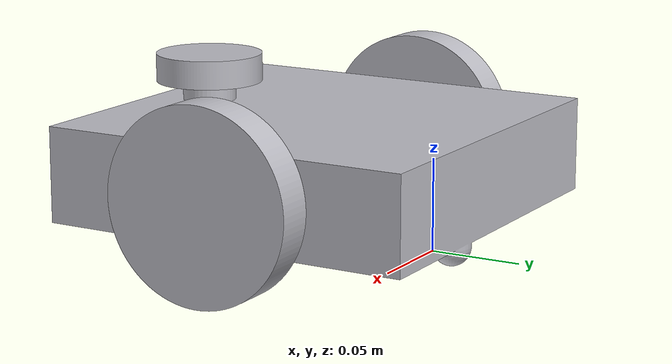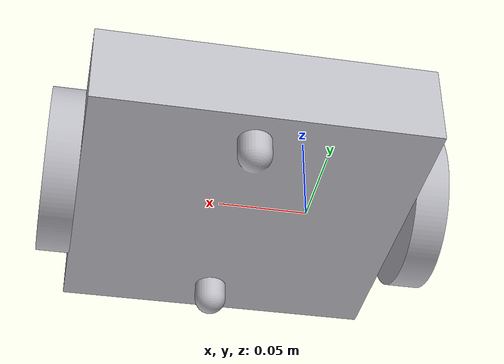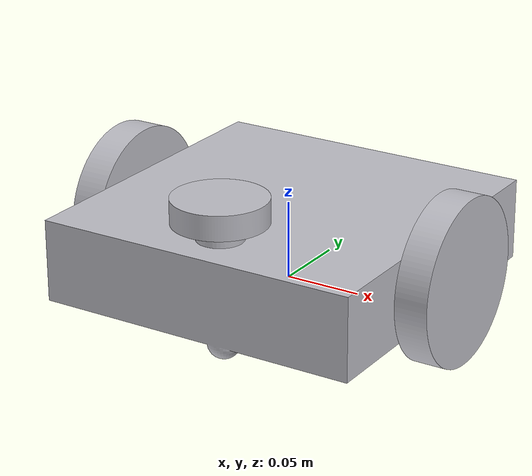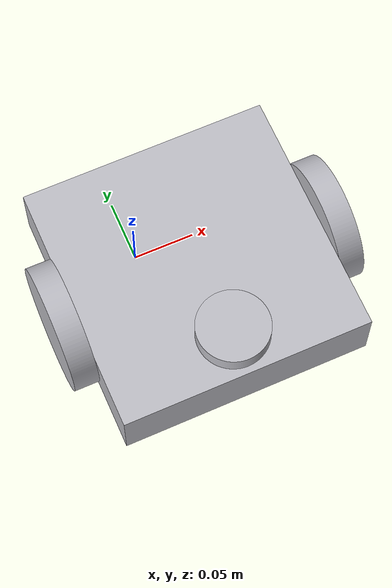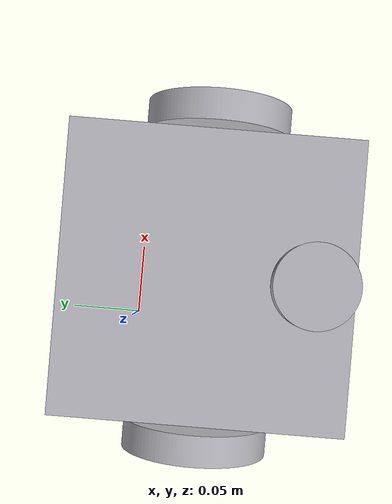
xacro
<?xml version="1.0" ?>
<robot name="last" xmlns:xacro="http://www.ros.org/wiki/xacro">

<xacro:include filename="$(find last_description)/urdf/materials.xacro" />
<xacro:include filename="$(find last_description)/urdf/last.trans" />
<xacro:include filename="$(find last_description)/urdf/last.gazebo" />
<link name="base_link">
  <inertial>
    <origin xyz="0.030025921353848677 -0.05036683140747315 0.0499196438031891" rpy="0 0 0"/>
    <mass value="2.878430890213171"/>
    <inertia ixx="0.010298" iyy="0.010136" izz="0.019194" ixy="-0.0" iyz="2e-05" ixz="2e-06"/>
  </inertial>
  <visual>
    <origin xyz="0 0 0" rpy="0 0 0"/>
    <geometry>
      <mesh filename="package://last_description/meshes/base_link.stl" scale="0.001 0.001 0.001"/>
    </geometry>
    <material name="silver"/>
  </visual>
  <collision>
    <origin xyz="0 0 0" rpy="0 0 0"/>
    <geometry>
      <mesh filename="package://last_description/meshes/base_link.stl" scale="0.001 0.001 0.001"/>
    </geometry>
  </collision>
</link>

<link name="left_1">
  <inertial>
    <origin xyz="0.010000000000000037 1.8294575822308534e-07 0.0" rpy="0 0 0"/>
    <mass value="0.1460840583919254"/>
    <inertia ixx="0.000183" iyy="9.6e-05" izz="9.6e-05" ixy="-0.0" iyz="-0.0" ixz="0.0"/>
  </inertial>
  <visual>
    <origin xyz="-0.13 0.05016 -0.05" rpy="0 0 0"/>
    <geometry>
      <mesh filename="package://last_description/meshes/left_1.stl" scale="0.001 0.001 0.001"/>
    </geometry>
    <material name="silver"/>
  </visual>
  <collision>
    <origin xyz="-0.13 0.05016 -0.05" rpy="0 0 0"/>
    <geometry>
      <mesh filename="package://last_description/meshes/left_1.stl" scale="0.001 0.001 0.001"/>
    </geometry>
  </collision>
</link>

<link name="right_1">
  <inertial>
    <origin xyz="-0.009999999999999981 1.8294575821614645e-07 -1.3877787807814457e-17" rpy="0 0 0"/>
    <mass value="0.14608405839192537"/>
    <inertia ixx="0.000183" iyy="9.6e-05" izz="9.6e-05" ixy="-0.0" iyz="-0.0" ixz="0.0"/>
  </inertial>
  <visual>
    <origin xyz="0.07 0.05016 -0.05" rpy="0 0 0"/>
    <geometry>
      <mesh filename="package://last_description/meshes/right_1.stl" scale="0.001 0.001 0.001"/>
    </geometry>
    <material name="silver"/>
  </visual>
  <collision>
    <origin xyz="0.07 0.05016 -0.05" rpy="0 0 0"/>
    <geometry>
      <mesh filename="package://last_description/meshes/right_1.stl" scale="0.001 0.001 0.001"/>
    </geometry>
  </collision>
</link>

<link name="lidar_1">
  <inertial>
    <origin xyz="0.0 0.0 0.007499999999999993" rpy="0 0 0"/>
    <mass value="0.29593802796815855"/>
    <inertia ixx="6.5e-05" iyy="6.5e-05" izz="0.000118" ixy="0.0" iyz="0.0" ixz="0.0"/>
  </inertial>
  <visual>
    <origin xyz="-0.03 0.12 -0.085" rpy="0 0 0"/>
    <geometry>
      <mesh filename="package://last_description/meshes/lidar_1.stl" scale="0.001 0.001 0.001"/>
    </geometry>
    <material name="silver"/>
  </visual>
  <collision>
    <origin xyz="-0.03 0.12 -0.085" rpy="0 0 0"/>
    <geometry>
      <mesh filename="package://last_description/meshes/lidar_1.stl" scale="0.001 0.001 0.001"/>
    </geometry>
  </collision>
</link>

<joint name="Revolute 1" type="continuous">
  <origin xyz="0.13 -0.05016 0.05" rpy="0 0 0"/>
  <parent link="base_link"/>
  <child link="left_1"/>
  <axis xyz="1.0 0.0 0.0"/>
</joint>

<joint name="Revolute 2" type="continuous">
  <origin xyz="-0.07 -0.05016 0.05" rpy="0 0 0"/>
  <parent link="base_link"/>
  <child link="right_1"/>
  <axis xyz="1.0 0.0 0.0"/>
</joint>

<joint name="Rigid 3" type="fixed">
  <origin xyz="0.03 -0.12 0.085" rpy="0 0 0"/>
  <parent link="base_link"/>
  <child link="lidar_1"/>
</joint>

</robot>

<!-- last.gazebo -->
<robot name="last" xmlns:xacro="http://www.ros.org/wiki/xacro" >

<xacro:property name="body_color" value="Gazebo/Silver" />

<gazebo>
  <plugin name="control" filename="libgazebo_ros_control.so"/>
</gazebo>
<gazebo reference="base_link">
  <material>${body_color}</material>
  <mu1>0.1</mu1>
  <mu2>0.1</mu2>
  <selfCollide>true</selfCollide>
  <gravity>true</gravity>
</gazebo>

<gazebo reference="left_1">
  <material>${body_color}</material>
  <mu1>1500</mu1>
  <mu2>1500</mu2>
  <selfCollide>true</selfCollide>
</gazebo>

<gazebo reference="right_1">
  <material>${body_color}</material>
  <mu1>1500</mu1>
  <mu2>1500</mu2>
  <selfCollide>true</selfCollide>
</gazebo>

<gazebo reference="lidar_1">
  <material>${body_color}</material>
  <mu1>0.2</mu1>
  <mu2>0.2</mu2>
  <selfCollide>true</selfCollide>
</gazebo>

<gazebo>
  <plugin name="differential_drive_controller" filename="libgazebo_ros_diff_drive.so">

    <!-- Plugin update rate in Hz -->
    <updateRate>100</updateRate>

    <!-- Name of left joint, defaults to `left_joint` -->
    <leftJoint>Revolute 1</leftJoint>

    <!-- Name of right joint, defaults to `right_joint` -->
    <rightJoint>Revolute 2</rightJoint>

    <!-- The distance from the center of one wheel to the other, in meters, defaults to 0.34 m -->
    <wheelSeparation>0.2</wheelSeparation>

    <!-- Diameter of the wheels, in meters, defaults to 0.15 m -->
    <wheelDiameter>0.1</wheelDiameter>

    <!-- Wheel acceleration, in rad/s^2, defaults to 0.0 rad/s^2 -->
    <wheelAcceleration>1.0</wheelAcceleration>

    <!-- Maximum torque which the wheels can produce, in Nm, defaults to 5 Nm -->
    <wheelTorque>50</wheelTorque>

    <!-- Topic to receive geometry_msgs/Twist message commands, defaults to `cmd_vel` -->
    <commandTopic>cmd_vel</commandTopic>

    <!-- Topic to publish nav_msgs/Odometry messages, defaults to `odom` -->
    <odometryTopic>odom</odometryTopic>

    <!-- Odometry frame, defaults to `odom` -->
    <odometryFrame>odom</odometryFrame>

    <!-- Robot frame to calculate odometry from, defaults to `base_footprint` -->
    <robotBaseFrame>base_link</robotBaseFrame>

    <!-- Odometry source, 0 for ENCODER, 1 for WORLD, defaults to WORLD -->
    <odometrySource>1</odometrySource>

    <!-- Set to true to publish transforms for the wheel links, defaults to false -->
    <publishWheelTF>true</publishWheelTF>

    <!-- Set to true to publish transforms for the odometry, defaults to true -->
    <publishOdom>true</publishOdom>

    <!-- Set to true to publish sensor_msgs/JointState on /joint_states for the wheel joints, defaults to false -->
    <publishWheelJointState>true</publishWheelJointState>

    <!-- Set to true to swap right and left wheels, defaults to true -->
    <legacyMode>false</legacyMode>
  </plugin>

<!-- hokuyo -->
  <gazebo reference="lidar_1">
    <sensor type="gpu_ray" name="head_hokuyo_sensor">
      <pose>0 0 0 0 0 0</pose>
      <visualize>true</visualize>
      <update_rate>40</update_rate>
      <ray>
        <scan>
          <horizontal>
            <samples>320</samples>
            <resolution>1</resolution>
            <min_angle>-1.570796</min_angle>
            <max_angle>1.570796</max_angle>
          </horizontal>
        </scan>
        <range>
          <min>0.10</min>
          <max>30.0</max>
          <resolution>0.01</resolution>
        </range>
        <noise>
          <type>gaussian</type>
          <mean>0.0</mean>
          <stddev>0.01</stddev>
        </noise>
      </ray>
      <plugin name="gazebo_ros_head_hokuyo_controller" filename="libgazebo_ros_gpu_laser.so">
        <topicName>/scan</topicName>
        <frameName>lidar_1</frameName>
      </plugin>
    </sensor>
  </gazebo>
</gazebo>

</robot>
